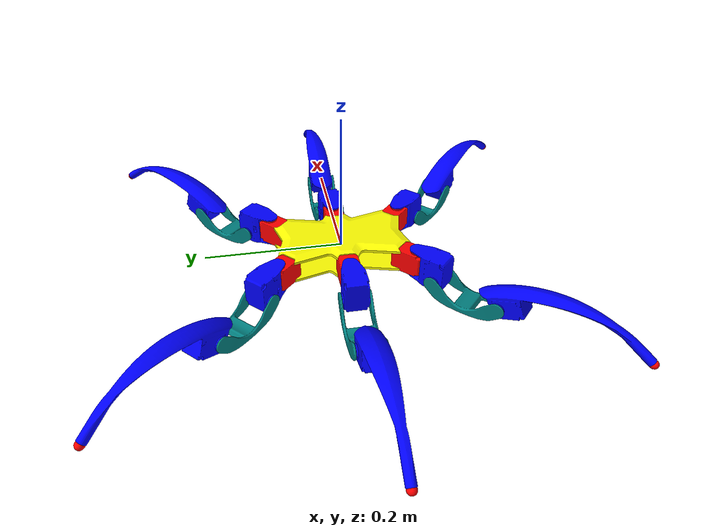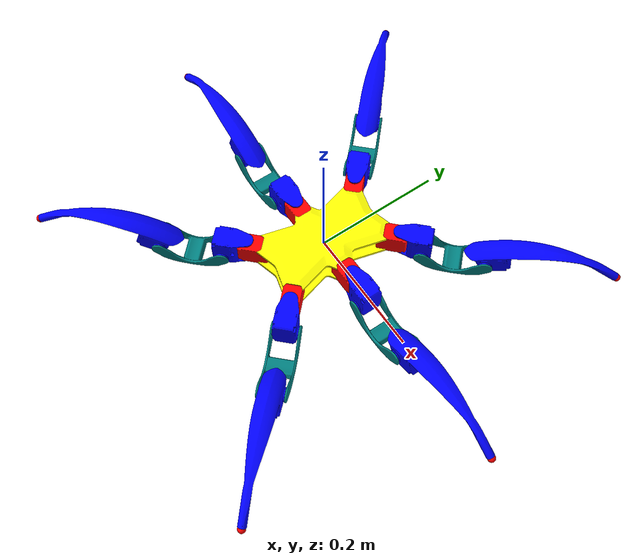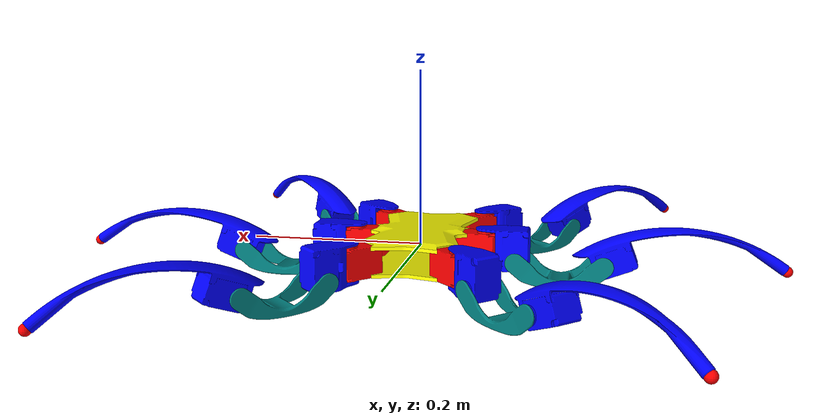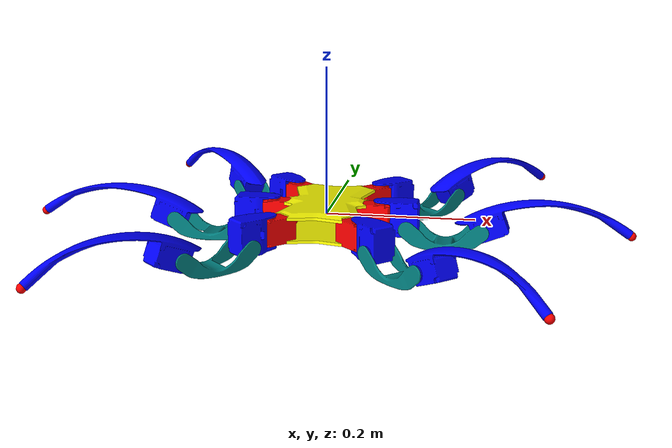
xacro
<?xml version="1.0"?>
<robot name="mildred"
       xmlns:sensor="http://playerstage.sourceforge.net/gazebo/xmlschema/#sensor"
       xmlns:controller="http://playerstage.sourceforge.net/gazebo/xmlschema/#controller"
       xmlns:interface="http://playerstage.sourceforge.net/gazebo/xmlschema/#interface"
       xmlns:xacro="http://www.ros.org/wiki/xacro">

    <xacro:include filename="$(find mildred_description)/urdf/variables.xacro" />
    <xacro:include filename="$(find mildred_description)/urdf/macros.xacro" />

    <link name="base_link"/>
    <joint name="base_to_thorax" type="fixed">
        <parent link="base_link"/>
        <child link="thorax"/>
        <origin xyz="0.00 0.00 0.00" rpy="0.00 0.00 0.00"/>
    </joint>

    <link name="thorax">
        <visual>
            <origin xyz="0.00 0.00 0.00" rpy="0.00 0.00 0.00"/>
            <geometry>
                <mesh filename="package://mildred_description/stl/body.stl" scale="0.001 0.001 0.001"/>
            </geometry>
            <material name="yellow">
                <color rgba="1.0 1.0 0.0 1.0"/>
            </material>
        </visual>
        <collision>
            <origin xyz="0.00 0.00 0.00" rpy="0.00 0.00 0.00"/>
            <geometry>
                <mesh filename="package://mildred_description/stl/body.stl" scale="0.001 0.001 0.001"/>
            </geometry>
        </collision>
        <xacro:default_inertial_mass mass="${thorax_mass}"/>
    </link>
    <gazebo reference="thorax">
        <material>Gazebo/Yellow</material>
    </gazebo>

    <!-- Leg Macro -->
    <xacro:macro name="leg" params="suffix angle x y mirror">

        <!-- Leg Anchor -->
        <joint name="hip_joint_${suffix}" type="fixed">
            <parent link="thorax"/>
            <child link="leg_${suffix}"/>
            <origin xyz="${x} ${y} 0.00" rpy="0.00 0.00 ${angle}"/>
        </joint>
        <link name="leg_${suffix}">
            <visual>
                <origin xyz="0.00 0.00 0.00" rpy="0.00 0.00 ${radians(-90)}"/>
                <geometry>
                    <mesh filename="package://mildred_description/stl/xl430.stl" scale="0.001 0.001 0.001"/>
                </geometry>
                <material name="red">
                    <color rgba="1.0 0.0 0.0 1.0"/>
                </material>
            </visual>
            <collision>
                <origin xyz="0.00 0.00 0.00" rpy="0.00 0.00 ${radians(-90)}"/>
                <geometry>
                    <mesh filename="package://mildred_description/stl/xl430.stl" scale="0.001 0.001 0.001"/>
                </geometry>
            </collision>
            <xacro:default_inertial/>
        </link>
        <gazebo reference="leg_${suffix}">
            <material>Gazebo/Red</material>
        </gazebo>

        <!-- Link 1/Coxa -->
        <joint name="coxa_joint_${suffix}" type="revolute">
            <parent link="leg_${suffix}"/>
            <child link="coxa_${suffix}"/>
            <axis xyz="0.00 0.00 1.00"/>
            <limit lower="${coxa_joint_lower_limit}" upper="${coxa_joint_upper_limit}" effort="${max_torque}" velocity="${max_velocity}"/>
            <dynamics damping="${damping}" friction="${friction}" />
        </joint>
        <link name="coxa_${suffix}">
            <visual>
                <origin xyz="0.00 0.00 0.00" rpy="0.00 0.00 ${radians(-90)}"/>
                <geometry>
                    <mesh filename="package://mildred_description/stl/coxa.stl" scale="0.001 0.001 0.001"/>
                </geometry>
                <material name="blue">
                    <color rgba="0.0 0.0 1.0 1.0"/>
                </material>
            </visual>
            <collision>
                <origin xyz="0.00 0.00 0.00" rpy="0.00 0.00 ${radians(-90)}"/>
                <geometry>
                    <mesh filename="package://mildred_description/stl/coxa.stl" scale="0.001 0.001 0.001"/>
                </geometry>
            </collision>
            <xacro:default_inertial_mass mass="${coxa_mass}"/>
        </link>
        <gazebo reference="coxa_${suffix}">
            <material>Gazebo/Blue</material>
        </gazebo>
        <transmission name="coxa_trans_${suffix}">
            <type>transmission_interface/SimpleTransmission</type>
            <joint name="coxa_joint_${suffix}">
                <hardwareInterface>hardware_interface/EffortJointInterface</hardwareInterface>
            </joint>
            <actuator name="coxa_motor_${suffix}">
                <hardwareInterface>hardware_interface/EffortJointInterface</hardwareInterface>
                <mechanicalReduction>1</mechanicalReduction>
            </actuator>
        </transmission>

        <!-- Link 2/Femur -->
        <joint name="femur_joint_${suffix}" type="revolute">
            <parent link="coxa_${suffix}"/>
            <child link="femur_${suffix}"/>
            <origin xyz="${coxa_length} 0.00 ${coxa_height}" rpy="0.00 0.00 0.00"/>
            <axis xyz="0.00 1.00 0.00"/>
            <limit lower="${femur_joint_lower_limit}" upper="${femur_joint_upper_limit}" effort="${max_torque}" velocity="${max_velocity}"/>
            <dynamics damping="${damping}" friction="${friction}" />
        </joint>
        <link name="femur_${suffix}">
            <visual>
                <origin xyz="0.00 0.00 0.00" rpy="0.00 0.00 ${radians(-90)}"/>
                <geometry>
                    <mesh filename="package://mildred_description/stl/femur.stl" scale="0.001 0.001 0.001"/>
                </geometry>
                <material name="blue">
                    <color rgba="0.0 0.5 0.5 1.0"/>
                </material>
            </visual>
            <collision>
                <origin xyz="0.00 0.00 0.00" rpy="0.00 0.00 ${radians(-90)}"/>
                <geometry>
                    <mesh filename="package://mildred_description/stl/femur.stl" scale="0.001 0.001 0.001"/>
                </geometry>
            </collision>
            <xacro:default_inertial_mass mass="${femur_mass}"/>
        </link>
        <gazebo reference="femur_${suffix}">
            <material>Gazebo/Turquoise</material>
        </gazebo>
        <transmission name="femur_trans_${suffix}">
            <type>transmission_interface/SimpleTransmission</type>
            <joint name="femur_joint_${suffix}">
                <hardwareInterface>hardware_interface/EffortJointInterface</hardwareInterface>
            </joint>
            <actuator name="femur_motor_${suffix}">
                <hardwareInterface>hardware_interface/EffortJointInterface</hardwareInterface>
                <mechanicalReduction>1</mechanicalReduction>
            </actuator>
        </transmission>

        <!-- Link 3/Tibia -->
        <joint name="tibia_joint_${suffix}" type="revolute">
            <parent link="femur_${suffix}"/>
            <child link="tibia_${suffix}"/>
            <origin xyz="${femur_length} 0.00 0.00" rpy="0.00 0.00 0.00"/>
            <axis xyz="0.00 1.00 0.00"/>
            <limit lower="${tibia_joint_lower_limit}" upper="${tibia_joint_upper_limit}" effort="${max_torque}" velocity="${max_velocity}"/>
            <dynamics damping="${damping}" friction="${friction}" />
        </joint>
        <link name="tibia_${suffix}">
            <visual>
                <origin xyz="0.00 0.000 0.00" rpy="${radians(tibia_angle)} 0.00 ${radians(-90)}"/>
                <geometry>
                    <mesh filename="package://mildred_description/stl/tibia.stl" scale="0.001 0.001 0.001"/>
                </geometry>
                <material name="blue">
                    <color rgba="0.0 0.0 1.0 1.0"/>
                </material>
            </visual>
            <collision>
                <origin xyz="0.00 0.000 0.00" rpy="${radians(tibia_angle)} 0.00 ${radians(-90)}"/>
                <geometry>
                    <mesh filename="package://mildred_description/stl/tibia.stl" scale="0.001 0.001 0.001"/>
                </geometry>
            </collision>
            <xacro:default_inertial_mass mass="${tibia_mass}"/>
        </link>
        <gazebo reference="tibia_${suffix}">
            <material>Gazebo/Purple</material>
        </gazebo>
        <transmission name="tibia_trans_${suffix}">
            <type>transmission_interface/SimpleTransmission</type>
            <joint name="tibia_joint_${suffix}">
                <hardwareInterface>hardware_interface/EffortJointInterface</hardwareInterface>
            </joint>
            <actuator name="tibia_motor_${suffix}">
                <hardwareInterface>hardware_interface/EffortJointInterface</hardwareInterface>
                <mechanicalReduction>1</mechanicalReduction>
            </actuator>
        </transmission>

        <!-- Tip/Foot -->
        <joint name="foot_joint_${suffix}" type="fixed">
            <parent link="tibia_${suffix}"/>
            <child link="foot_frame_${suffix}"/>
            <origin xyz="${tibia_length} 0.00 0.00" rpy="0.00 0.00 0.00"/>
        </joint>
        <link name="foot_frame_${suffix}">
            <visual>
                <origin xyz="0 0 0"/>
                <geometry>
                    <sphere radius="${foot_radius}"/>
                </geometry>
                <material name="red">
                    <color rgba="1.0 0.0 0.0 1.0"/>
                </material>
            </visual>
            <collision name="foot_collision">
                <origin xyz="0 0 0"/>
                <geometry>
                    <sphere radius="${foot_radius}"/>
                </geometry>
            </collision>
            <xacro:default_inertial_mass mass="${foot_mass}"/>
        </link>
        <gazebo reference="foot_frame_${suffix}">
            <material>Gazebo/Red</material>
            <mu1 value="1.0"/>
            <mu2 value="1.0"/>
            <kp value="10000000.0"/>
            <kd value="1.0"/>
            <fdir1 value="1 0 0"/>
        </gazebo>

    </xacro:macro>

    <xacro:leg suffix="0" x="${corner_x}" y="${corner_y}" angle="${radians(leg_angle)}" mirror="-1"/>
    <xacro:leg suffix="1" x="${center_x}" y="0.00" angle="${radians(0)}" mirror="-1"/>
    <xacro:leg suffix="2" x="${corner_x}" y="-${corner_y}" angle="${radians(-leg_angle)}" mirror="-1"/>

    <xacro:leg suffix="3" x="-${corner_x}" y="-${corner_y}" angle="${radians(180 + leg_angle)}" mirror="1"/>
    <xacro:leg suffix="4" x="-${center_x}" y="0.00" angle="${radians(180)}" mirror="1"/>
    <xacro:leg suffix="5" x="-${corner_x}" y="${corner_y}" angle="${radians(180 - leg_angle)}" mirror="1"/>

    <gazebo>
        <plugin name="gazebo_ros_control" filename="libgazebo_ros_control.so">
            <robotNamespace>/mildred</robotNamespace>
        </plugin>
    </gazebo>

</robot>

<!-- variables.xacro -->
<robot xmlns:xacro="http://www.ros.org/wiki/xacro">

    <xacro:property name="leg_angle" value="45"/>
    <xacro:property name="corner_x" value="0.059789"/>
    <xacro:property name="corner_y" value="0.099919"/>
    <xacro:property name="center_x" value="0.075378"/>

    <xacro:property name="thorax_radius" value="0.064"/>
    <xacro:property name="thorax_height" value="0.040"/>
    <xacro:property name="thorax_mass" value="0.2"/>

    <xacro:property name="coxa_height" value="-0.01305"/>
    <xacro:property name="coxa_length" value="0.03525"/>
    <xacro:property name="coxa_mass" value="0.162"/>

    <xacro:property name="femur_length" value="0.0975"/>
    <xacro:property name="femur_angle" value="39.2"/>
    <xacro:property name="femur_mass" value="0.025981"/>

    <xacro:property name="tibia_length" value="0.195"/>
    <xacro:property name="tibia_angle" value="21.3"/>
    <xacro:property name="tibia_mass" value="0.107208"/>

    <xacro:property name="foot_radius" value="0.006"/>
    <xacro:property name="foot_mass" value="0.005"/>

    <!-- http://emanual.robotis.com/docs/en/dxl/x/xl430-w250/#specifications -->
    <xacro:property name="max_torque" value="1.4"/> <!-- this is stall torque, graph shows 0.84, stall torque is 1.4 -->
    <xacro:property name="max_velocity" value="${((2 * pi) / 60) * 57}"/> <!-- rpm to rad/s -->

    <!-- Joint Properties -->

    <xacro:property name="coxa_joint_lower_limit" value="-${pi}"/>
    <xacro:property name="coxa_joint_upper_limit" value="${pi}"/>

    <xacro:property name="femur_joint_lower_limit" value="-${pi}"/>
    <xacro:property name="femur_joint_upper_limit" value="${pi}"/>

    <xacro:property name="tibia_joint_lower_limit" value="-${pi}"/>
    <xacro:property name="tibia_joint_upper_limit" value="${pi}"/>

    <xacro:property name="damping" value="0"/>
    <xacro:property name="friction" value="1"/>
</robot>

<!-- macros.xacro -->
<robot xmlns:xacro="http://www.ros.org/wiki/xacro">

    <xacro:macro name="default_inertial">
        <inertial>
            <origin xyz="0.0 0.0 0.0" rpy="0.0 0.0 0.0" />
            <mass value="0.00001"/>
            <inertia ixx="1.0" ixy="0.0" ixz="0.0" iyy="1.0" iyz="0.0" izz="1.0"/>
        </inertial>
    </xacro:macro>

    <xacro:macro name="default_inertial_mass" params="mass">
        <inertial>
            <mass value="${mass}"/>
            <inertia ixx="0.001" ixy="0.0" ixz="0.0" iyy="0.001" iyz="0.0" izz="0.001"/>
        </inertial>
    </xacro:macro>

    <xacro:macro name="sphere_inertial" params="radius mass">
        <inertial>
            <mass value="${mass}" />
            <origin xyz="0 0 0" />
            <inertia ixx="${0.4 * mass * radius * radius}" ixy="0.0" ixz="0.0"
                     iyy="${0.4 * mass * radius * radius}" iyz="0.0"
                     izz="${0.4 * mass * radius * radius}" />
        </inertial>
    </xacro:macro>

    <xacro:macro name="cylinder_inertial" params="radius length mass">
        <inertial>
            <mass value="${mass}" />
            <origin xyz="0 0 0" />
            <inertia ixx="${0.0833333 * mass * (3 * radius * radius + length * length)}" ixy="0.0" ixz="0.0"
                     iyy="${0.0833333 * mass * (3 * radius * radius + length * length)}" iyz="0.0"
                     izz="${0.5 * mass * radius * radius}" />
        </inertial>
    </xacro:macro>

    <xacro:macro name="box_inertial" params="x y z mass">
        <inertial>
            <mass value="${mass}" />
            <origin xyz="0 0 0" />
            <inertia ixx="${0.0833333 * mass * (y*y + z*z)}" ixy="0.0" ixz="0.0"
                     iyy="${0.0833333 * mass * (x*x + z*z)}" iyz="0.0"
                     izz="${0.0833333 * mass * (x*x + y*y)}" />
        </inertial>
    </xacro:macro>

    <xacro:macro name="sphere_inertial_with_origin" params="radius mass *origin">
        <inertial>
            <mass value="${mass}" />
            <xacro:insert_block name="origin" />
            <inertia ixx="${0.4 * mass * radius * radius}" ixy="0.0" ixz="0.0"
                     iyy="${0.4 * mass * radius * radius}" iyz="0.0"
                     izz="${0.4 * mass * radius * radius}" />
        </inertial>
    </xacro:macro>

    <xacro:macro name="cylinder_inertial_with_origin" params="radius length mass *origin">
        <inertial>
            <mass value="${mass}" />
            <xacro:insert_block name="origin" />
            <inertia ixx="${0.0833333 * mass * (3 * radius * radius + length * length)}" ixy="0.0" ixz="0.0"
                     iyy="${0.0833333 * mass * (3 * radius * radius + length * length)}" iyz="0.0"
                     izz="${0.5 * mass * radius * radius}" />
        </inertial>
    </xacro:macro>

    <xacro:macro name="box_inertial_with_origin" params="x y z mass *origin">
        <inertial>
            <mass value="${mass}" />
            <xacro:insert_block name="origin" />
            <inertia ixx="${0.0833333 * mass * (y*y + z*z)}" ixy="0.0" ixz="0.0"
                     iyy="${0.0833333 * mass * (x*x + z*z)}" iyz="0.0"
                     izz="${0.0833333 * mass * (x*x + y*y)}" />
        </inertial>
    </xacro:macro>

</robot>
